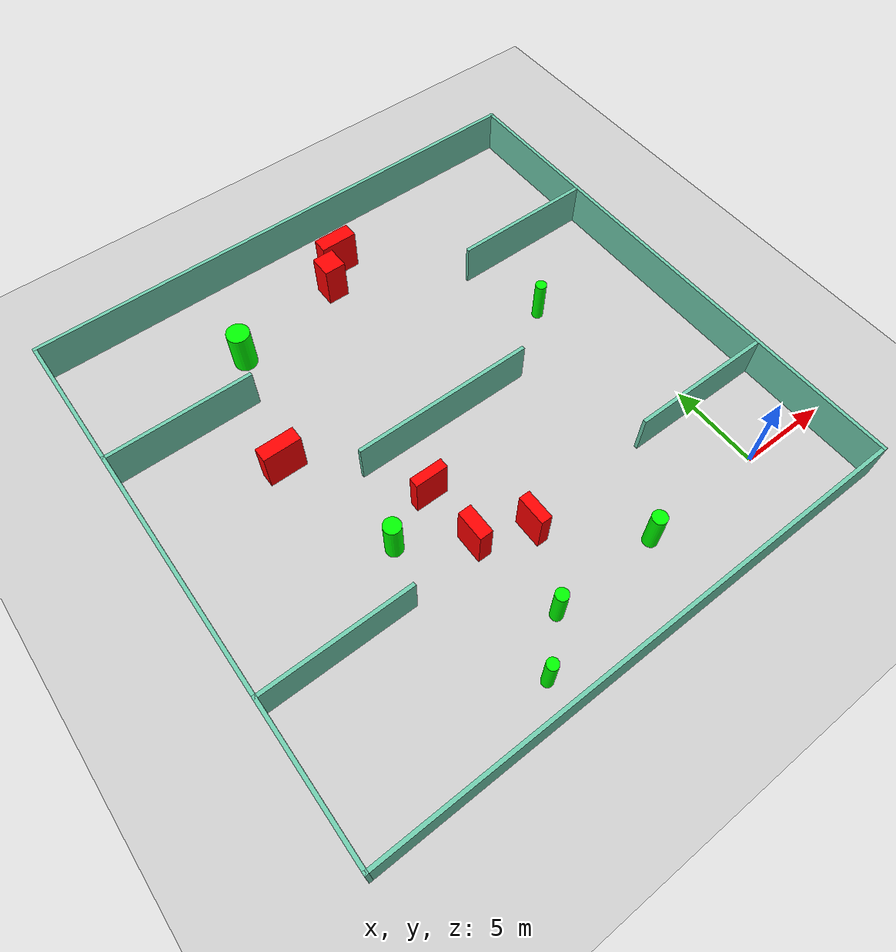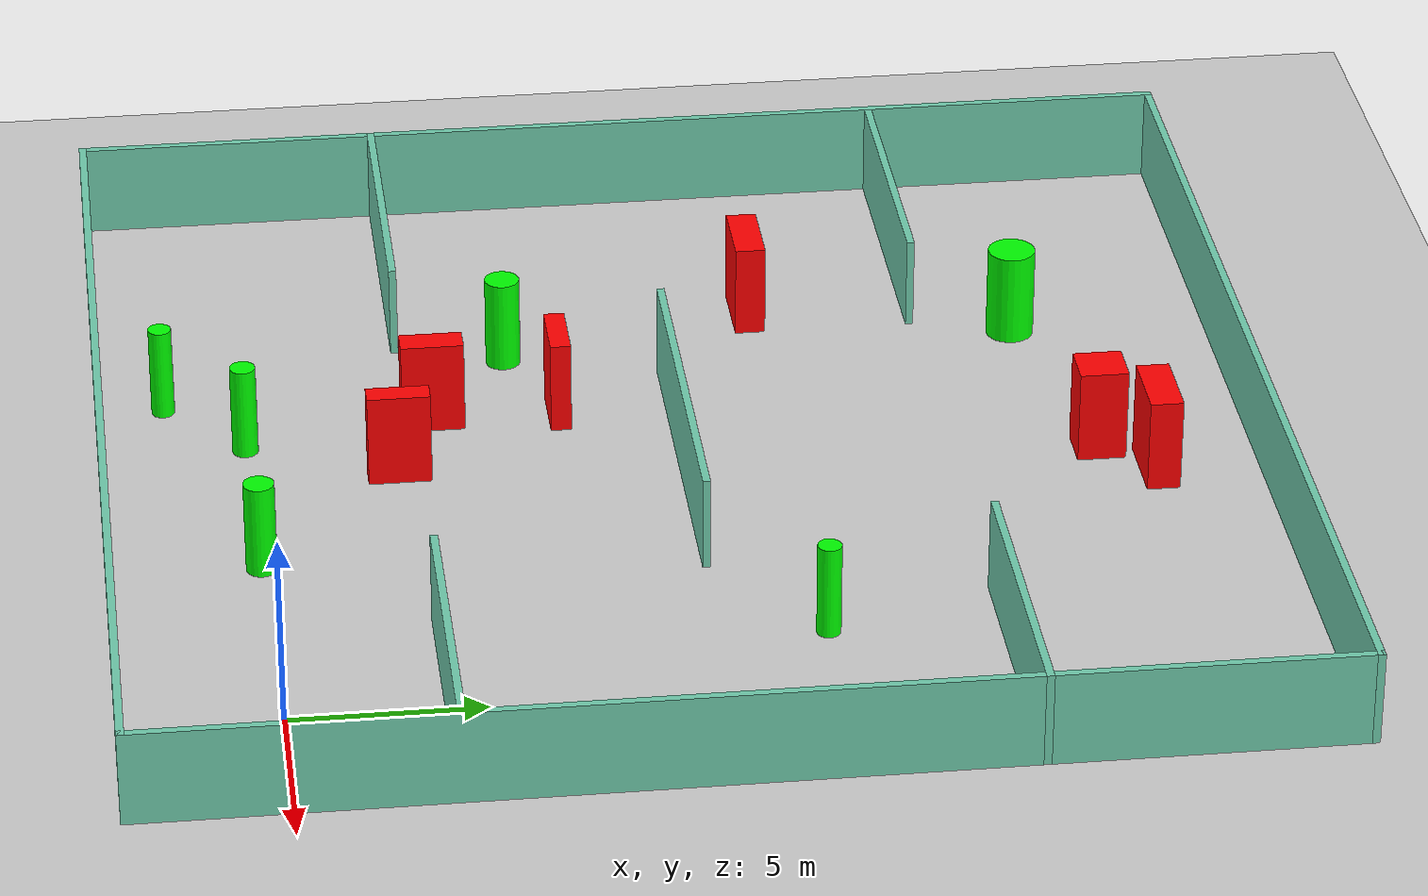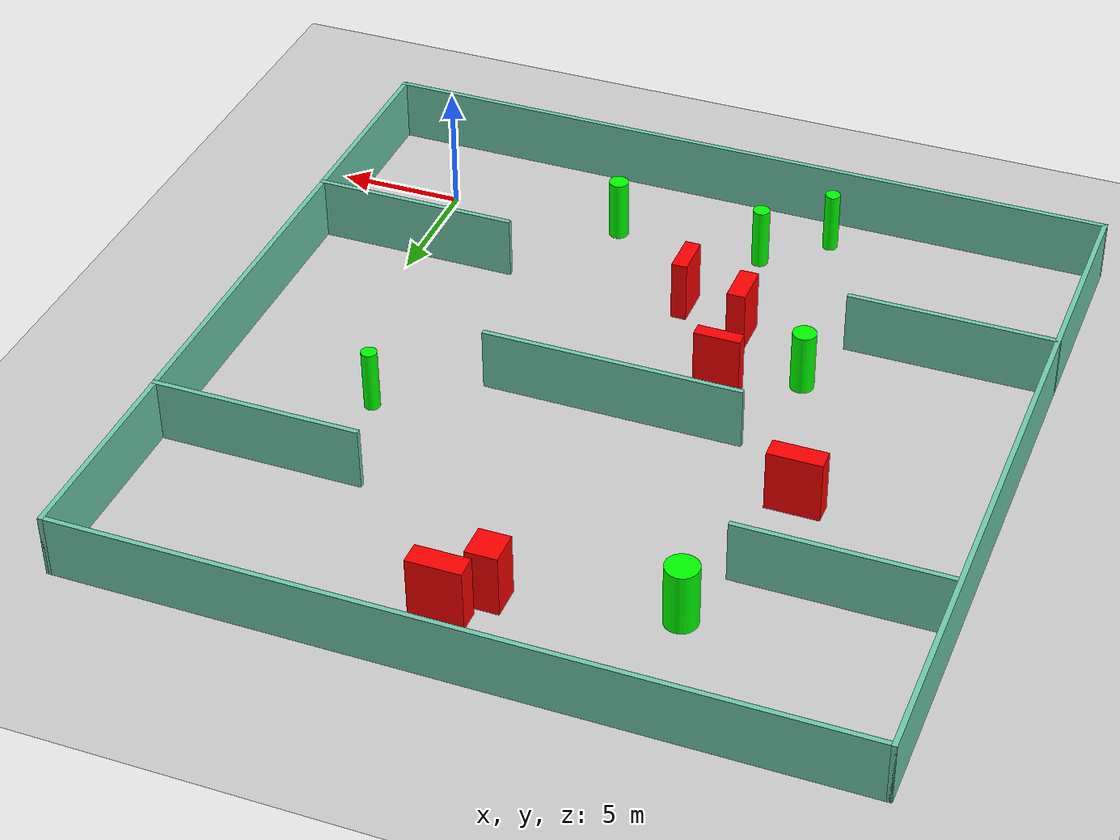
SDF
<sdf version="1.7">
 <world name="default">
  <light name="sun" type="directional">
   <pose>0 0 10 0 -0 0</pose>
   <diffuse>0.8 0.8 0.8 1</diffuse>
   <specular>0.2 0.2 0.2 1</specular>
   <attenuation>
    <range>1000</range>
    <constant>0.9</constant>
    <linear>0.01</linear>
    <quadratic>0.001</quadratic>
   </attenuation>
   <direction>-0.5 0.1 -0.9</direction>
   <spot><inner_angle>0</inner_angle><outer_angle>0</outer_angle><falloff>0</falloff></spot>
  </light>
  <model name="ground_plane">
   <static>1</static>
   <link name="link">
    <collision name="collision">
     <geometry><plane><normal>0 0 1</normal><size>100 100</size></plane></geometry>
     <surface>
      <contact><collide_bitmask>65535</collide_bitmask></contact>
      <friction><ode><mu>100</mu><mu2>50</mu2></ode></friction>
     </surface>
    </collision>
    <visual name="visual">
     <cast_shadows>0</cast_shadows>
     <geometry><plane><normal>0 0 1</normal><size>100 100</size></plane></geometry>
     <material>
      <script><uri>file://media/materials/scripts/gazebo.material</uri><name>Gazebo/Grey</name></script>
     </material>
    </visual>
   </link>
  </model>
  <gravity>0 0 -9.8</gravity>
  <magnetic_field>6e-06 2.3e-05 -4.2e-05</magnetic_field>
  <atmosphere type="adiabatic"/>
  <physics type="ode">
   <max_step_size>0.001</max_step_size>
   <real_time_factor>1</real_time_factor>
   <real_time_update_rate>1000</real_time_update_rate>
  </physics>
  <scene><ambient>0.4 0.4 0.4 1</ambient><background>0.7 0.7 0.7 1</background><shadows>1</shadows></scene>
  <spherical_coordinates>
   <surface_model>EARTH_WGS84</surface_model>
   <latitude_deg>0</latitude_deg>
   <longitude_deg>0</longitude_deg>
   <elevation>0</elevation>
   <heading_deg>0</heading_deg>
  </spherical_coordinates>
  <model name="my_base_walls">
   <link name="Wall_10">
    <collision name="Wall_10_Collision">
     <geometry><box><size>8.2 0.2 2.5</size></box></geometry>
     <pose>0 0 1.25 0 -0 0</pose>
    </collision>
    <visual name="Wall_10_Visual">
     <pose>0 0 1.25 0 -0 0</pose>
     <geometry><box><size>8.2 0.2 2.5</size></box></geometry>
     <material>
      <script><uri>file://media/materials/scripts/gazebo.material</uri><name>Gazebo/Grey</name></script>
      <ambient>0.435294 0.796078 0.67451 1</ambient>
     </material>
     <meta><layer>0</layer></meta>
    </visual>
    <pose>-11 -7 0 0 -0 0</pose>
   </link>
   <link name="Wall_12">
    <collision name="Wall_12_Collision">
     <geometry><box><size>8.2 0.2 2.5</size></box></geometry>
     <pose>0 0 1.25 0 -0 0</pose>
    </collision>
    <visual name="Wall_12_Visual">
     <pose>0 0 1.25 0 -0 0</pose>
     <geometry><box><size>8.2 0.2 2.5</size></box></geometry>
     <material>
      <script><uri>file://media/materials/scripts/gazebo.material</uri><name>Gazebo/Grey</name></script>
      <ambient>0.435294 0.796078 0.67451 1</ambient>
     </material>
     <meta><layer>0</layer></meta>
    </visual>
    <pose>-11 7 0 0 -0 0</pose>
   </link>
   <link name="Wall_14">
    <collision name="Wall_14_Collision">
     <geometry><box><size>8.2 0.2 2.5</size></box></geometry>
     <pose>0 0 1.25 0 -0 0</pose>
    </collision>
    <visual name="Wall_14_Visual">
     <pose>0 0 1.25 0 -0 0</pose>
     <geometry><box><size>8.2 0.2 2.5</size></box></geometry>
     <material>
      <script><uri>file://media/materials/scripts/gazebo.material</uri><name>Gazebo/Grey</name></script>
      <ambient>0.435294 0.796078 0.67451 1</ambient>
     </material>
     <meta><layer>0</layer></meta>
    </visual>
    <pose>11 7 0 0 -0 3.14159</pose>
   </link>
   <link name="Wall_16">
    <collision name="Wall_16_Collision">
     <geometry><box><size>10.2 0.2 2.5</size></box></geometry>
     <pose>0 0 1.25 0 -0 0</pose>
    </collision>
    <visual name="Wall_16_Visual">
     <pose>0 0 1.25 0 -0 0</pose>
     <geometry><box><size>10.2 0.2 2.5</size></box></geometry>
     <material>
      <script><uri>file://media/materials/scripts/gazebo.material</uri><name>Gazebo/Grey</name></script>
      <ambient>0.435294 0.796078 0.67451 1</ambient>
     </material>
     <meta><layer>0</layer></meta>
    </visual>
    <pose>0 0 0 0 -0 3.14159</pose>
   </link>
   <link name="Wall_2">
    <collision name="Wall_2_Collision">
     <geometry><box><size>30.2 0.2 2.5</size></box></geometry>
     <pose>0 0 1.25 0 -0 0</pose>
    </collision>
    <visual name="Wall_2_Visual">
     <pose>0 0 1.25 0 -0 0</pose>
     <geometry><box><size>30.2 0.2 2.5</size></box></geometry>
     <material>
      <script><uri>file://media/materials/scripts/gazebo.material</uri><name>Gazebo/Grey</name></script>
      <ambient>0.435294 0.796078 0.67451 1</ambient>
     </material>
     <meta><layer>0</layer></meta>
    </visual>
    <pose>0 -15 0 0 -0 3.14159</pose>
   </link>
   <link name="Wall_3">
    <collision name="Wall_3_Collision">
     <geometry><box><size>30.2 0.2 2.5</size></box></geometry>
     <pose>0 0 1.25 0 -0 0</pose>
    </collision>
    <visual name="Wall_3_Visual">
     <pose>0 0 1.25 0 -0 0</pose>
     <geometry><box><size>30.2 0.2 2.5</size></box></geometry>
     <material>
      <script><uri>file://media/materials/scripts/gazebo.material</uri><name>Gazebo/Grey</name></script>
      <ambient>0.435294 0.796078 0.67451 1</ambient>
     </material>
     <meta><layer>0</layer></meta>
    </visual>
    <pose>-15 0 0 0 -0 1.5708</pose>
   </link>
   <link name="Wall_4">
    <collision name="Wall_4_Collision">
     <geometry><box><size>30.2 0.2 2.5</size></box></geometry>
     <pose>0 0 1.25 0 -0 0</pose>
    </collision>
    <visual name="Wall_4_Visual">
     <pose>0 0 1.25 0 -0 0</pose>
     <geometry><box><size>30.2 0.2 2.5</size></box></geometry>
     <material>
      <script><uri>file://media/materials/scripts/gazebo.material</uri><name>Gazebo/Grey</name></script>
      <ambient>0.435294 0.796078 0.67451 1</ambient>
     </material>
     <meta><layer>0</layer></meta>
    </visual>
    <pose>0 15 0 0 -0 0</pose>
   </link>
   <link name="Wall_6">
    <collision name="Wall_6_Collision">
     <geometry><box><size>30.2 0.2 2.5</size></box></geometry>
     <pose>0 0 1.25 0 -0 0</pose>
    </collision>
    <visual name="Wall_6_Visual">
     <pose>0 0 1.25 0 -0 0</pose>
     <geometry><box><size>30.2 0.2 2.5</size></box></geometry>
     <material>
      <script><uri>file://media/materials/scripts/gazebo.material</uri><name>Gazebo/Grey</name></script>
      <ambient>0.435294 0.796078 0.67451 1</ambient>
     </material>
     <meta><layer>0</layer></meta>
    </visual>
    <pose>15 0 0 0 -0 1.5708</pose>
   </link>
   <link name="Wall_8">
    <collision name="Wall_8_Collision">
     <geometry><box><size>8.2 0.2 2.5</size></box></geometry>
     <pose>0 0 1.25 0 -0 0</pose>
    </collision>
    <visual name="Wall_8_Visual">
     <pose>0 0 1.25 0 -0 0</pose>
     <geometry><box><size>8.2 0.2 2.5</size></box></geometry>
     <material>
      <script><uri>file://media/materials/scripts/gazebo.material</uri><name>Gazebo/Grey</name></script>
      <ambient>0.435294 0.796078 0.67451 1</ambient>
     </material>
     <meta><layer>0</layer></meta>
    </visual>
    <pose>11 -7 0 0 -0 3.14159</pose>
   </link>
   <static>1</static>
   <pose>-11 11 0 0 -0 0</pose>
  </model>
  <model name="cylinder1">
   <static>1</static>
   <link name="link">
    <inertial>
     <mass>1</mass>
     <inertia><ixx>0.5</ixx><ixy>0</ixy><ixz>0</ixz><iyy>0.5</iyy><iyz>0</iyz><izz>1</izz></inertia>
    </inertial>
    <collision name="collision">
     <geometry><cylinder><radius>0.4615935199560974</radius><length>2.5</length></cylinder></geometry>
    </collision>
    <visual name="visual">
     <geometry><cylinder><radius>0.4615935199560974</radius><length>2.5</length></cylinder></geometry>
     <material>
      <ambient>0 1 0 1</ambient>
      <diffuse>0 1 0 1</diffuse>
      <specular>0.1 0.1 0.1 1</specular>
      <emissive>0 0 0 0</emissive>
     </material>
    </visual>
   </link>
   <pose>-17.101953012410245 6.864021003926148 1.25 0 0 0</pose>
  </model>
  <model name="cylinder2">
   <static>1</static>
   <link name="link">
    <inertial>
     <mass>1</mass>
     <inertia><ixx>0.5</ixx><ixy>0</ixy><ixz>0</ixz><iyy>0.5</iyy><iyz>0</iyz><izz>1</izz></inertia>
    </inertial>
    <collision name="collision">
     <geometry><cylinder><radius>0.30793343039884913</radius><length>2.5</length></cylinder></geometry>
    </collision>
    <visual name="visual">
     <geometry><cylinder><radius>0.30793343039884913</radius><length>2.5</length></cylinder></geometry>
     <material>
      <ambient>0 1 0 1</ambient>
      <diffuse>0 1 0 1</diffuse>
      <specular>0.1 0.1 0.1 1</specular>
      <emissive>0 0 0 0</emissive>
     </material>
    </visual>
   </link>
   <pose>-2.480556562502649 13.63659234368063 1.25 0 0 0</pose>
  </model>
  <model name="cylinder3">
   <static>1</static>
   <link name="link">
    <inertial>
     <mass>1</mass>
     <inertia><ixx>0.5</ixx><ixy>0</ixy><ixz>0</ixz><iyy>0.5</iyy><iyz>0</iyz><izz>1</izz></inertia>
    </inertial>
    <collision name="collision">
     <geometry><cylinder><radius>0.39523740953146325</radius><length>2.5</length></cylinder></geometry>
    </collision>
    <visual name="visual">
     <geometry><cylinder><radius>0.39523740953146325</radius><length>2.5</length></cylinder></geometry>
     <material>
      <ambient>0 1 0 1</ambient>
      <diffuse>0 1 0 1</diffuse>
      <specular>0.1 0.1 0.1 1</specular>
      <emissive>0 0 0 0</emissive>
     </material>
    </visual>
   </link>
   <pose>-7.112991833191575 -0.15652401360564916 1.25 0 0 0</pose>
  </model>
  <model name="cylinder4">
   <static>1</static>
   <link name="link">
    <inertial>
     <mass>1</mass>
     <inertia><ixx>0.5</ixx><ixy>0</ixy><ixz>0</ixz><iyy>0.5</iyy><iyz>0</iyz><izz>1</izz></inertia>
    </inertial>
    <collision name="collision">
     <geometry><cylinder><radius>0.3026572627058955</radius><length>2.5</length></cylinder></geometry>
    </collision>
    <visual name="visual">
     <geometry><cylinder><radius>0.3026572627058955</radius><length>2.5</length></cylinder></geometry>
     <material>
      <ambient>0 1 0 1</ambient>
      <diffuse>0 1 0 1</diffuse>
      <specular>0.1 0.1 0.1 1</specular>
      <emissive>0 0 0 0</emissive>
     </material>
    </visual>
   </link>
   <pose>-15.413270527012473 -2.3023838224340185 1.25 0 0 0</pose>
  </model>
  <model name="cylinder5">
   <static>1</static>
   <link name="link">
    <inertial>
     <mass>1</mass>
     <inertia><ixx>0.5</ixx><ixy>0</ixy><ixz>0</ixz><iyy>0.5</iyy><iyz>0</iyz><izz>1</izz></inertia>
    </inertial>
    <collision name="collision">
     <geometry><cylinder><radius>0.6336604602448821</radius><length>2.5</length></cylinder></geometry>
    </collision>
    <visual name="visual">
     <geometry><cylinder><radius>0.6336604602448821</radius><length>2.5</length></cylinder></geometry>
     <material>
      <ambient>0 1 0 1</ambient>
      <diffuse>0 1 0 1</diffuse>
      <specular>0.1 0.1 0.1 1</specular>
      <emissive>0 0 0 0</emissive>
     </material>
    </visual>
   </link>
   <pose>-17.16149222416987 20.630403016624797 1.25 0 0 0</pose>
  </model>
  <model name="cylinder6">
   <static>1</static>
   <link name="link">
    <inertial>
     <mass>1</mass>
     <inertia><ixx>0.5</ixx><ixy>0</ixy><ixz>0</ixz><iyy>0.5</iyy><iyz>0</iyz><izz>1</izz></inertia>
    </inertial>
    <collision name="collision">
     <geometry><cylinder><radius>0.3357500768759087</radius><length>2.5</length></cylinder></geometry>
    </collision>
    <visual name="visual">
     <geometry><cylinder><radius>0.3357500768759087</radius><length>2.5</length></cylinder></geometry>
     <material>
      <ambient>0 1 0 1</ambient>
      <diffuse>0 1 0 1</diffuse>
      <specular>0.1 0.1 0.1 1</specular>
      <emissive>0 0 0 0</emissive>
     </material>
    </visual>
   </link>
   <pose>-13.101370196963524 -0.25137862096097674 1.25 0 0 0</pose>
  </model>
  <model name="box1">
   <static>1</static>
   <link name="link">
    <inertial>
     <mass>1</mass>
     <inertia><ixx>0.083</ixx><ixy>0</ixy><ixz>0</ixz><iyy>0.083</iyy><iyz>0</iyz><izz>0.083</izz></inertia>
    </inertial>
    <collision name="collision">
     <geometry><box><size>0.7368795465691729 1.6558296047383265 2.5</size></box></geometry>
    </collision>
    <visual name="visual">
     <geometry><box><size>0.7368795465691729 1.6558296047383265 2.5</size></box></geometry>
     <material>
      <ambient>1 0 0 1</ambient>
      <diffuse>1 0 0 1</diffuse>
      <specular>0.1 0.1 0.1 1</specular>
      <emissive>0 0 0 0</emissive>
     </material>
    </visual>
    <sensor name="my_contact" type="contact">
     <contact><collision>box_collision</collision><topic>__default_topic__</topic></contact>
    </sensor>
   </link>
   <pose>-13.975285343610558 4.723142157075863 1.25 0 0 0</pose>
  </model>
  <model name="box2">
   <static>1</static>
   <link name="link">
    <inertial>
     <mass>1</mass>
     <inertia><ixx>0.083</ixx><ixy>0</ixy><ixz>0</ixz><iyy>0.083</iyy><iyz>0</iyz><izz>0.083</izz></inertia>
    </inertial>
    <collision name="collision">
     <geometry><box><size>2.0984681801038905 0.8030872361469255 2.5</size></box></geometry>
    </collision>
    <visual name="visual">
     <geometry><box><size>2.0984681801038905 0.8030872361469255 2.5</size></box></geometry>
     <material>
      <ambient>1 0 0 1</ambient>
      <diffuse>1 0 0 1</diffuse>
      <specular>0.1 0.1 0.1 1</specular>
      <emissive>0 0 0 0</emissive>
     </material>
    </visual>
    <sensor name="my_contact" type="contact">
     <contact><collision>box_collision</collision><topic>__default_topic__</topic></contact>
    </sensor>
   </link>
   <pose>-18.974981912624322 13.652147458791987 1.25 0 0 0</pose>
  </model>
  <model name="box3">
   <static>1</static>
   <link name="link">
    <inertial>
     <mass>1</mass>
     <inertia><ixx>0.083</ixx><ixy>0</ixy><ixz>0</ixz><iyy>0.083</iyy><iyz>0</iyz><izz>0.083</izz></inertia>
    </inertial>
    <collision name="collision">
     <geometry><box><size>1.8164145548617407 0.5435851542094192 2.5</size></box></geometry>
    </collision>
    <visual name="visual">
     <geometry><box><size>1.8164145548617407 0.5435851542094192 2.5</size></box></geometry>
     <material>
      <ambient>1 0 0 1</ambient>
      <diffuse>1 0 0 1</diffuse>
      <specular>0.1 0.1 0.1 1</specular>
      <emissive>0 0 0 0</emissive>
     </material>
    </visual>
    <sensor name="my_contact" type="contact">
     <contact><collision>box_collision</collision><topic>__default_topic__</topic></contact>
    </sensor>
   </link>
   <pose>-14.151578803720081 8.052326704855467 1.25 0 0 0</pose>
  </model>
  <model name="box4">
   <static>1</static>
   <link name="link">
    <inertial>
     <mass>1</mass>
     <inertia><ixx>0.083</ixx><ixy>0</ixy><ixz>0</ixz><iyy>0.083</iyy><iyz>0</iyz><izz>0.083</izz></inertia>
    </inertial>
    <collision name="collision">
     <geometry><box><size>0.6120970401647892 1.6437144112816968 2.5</size></box></geometry>
    </collision>
    <visual name="visual">
     <geometry><box><size>0.6120970401647892 1.6437144112816968 2.5</size></box></geometry>
     <material>
      <ambient>1 0 0 1</ambient>
      <diffuse>1 0 0 1</diffuse>
      <specular>0.1 0.1 0.1 1</specular>
      <emissive>0 0 0 0</emissive>
     </material>
    </visual>
    <sensor name="my_contact" type="contact">
     <contact><collision>box_collision</collision><topic>__default_topic__</topic></contact>
    </sensor>
   </link>
   <pose>-11.312694761362522 3.651166866448868 1.25 0 0 0</pose>
  </model>
  <model name="box5">
   <static>1</static>
   <link name="link">
    <inertial>
     <mass>1</mass>
     <inertia><ixx>0.083</ixx><ixy>0</ixy><ixz>0</ixz><iyy>0.083</iyy><iyz>0</iyz><izz>0.083</izz></inertia>
    </inertial>
    <collision name="collision">
     <geometry><box><size>2.0861665046645235 0.8667493277773767 2.5</size></box></geometry>
    </collision>
    <visual name="visual">
     <geometry><box><size>2.0861665046645235 0.8667493277773767 2.5</size></box></geometry>
     <material>
      <ambient>1 0 0 1</ambient>
      <diffuse>1 0 0 1</diffuse>
      <specular>0.1 0.1 0.1 1</specular>
      <emissive>0 0 0 0</emissive>
     </material>
    </visual>
    <sensor name="my_contact" type="contact">
     <contact><collision>box_collision</collision><topic>__default_topic__</topic></contact>
    </sensor>
   </link>
   <pose>-9.445281997727228 23.2068578512371 1.25 0 0 0</pose>
  </model>
  <model name="box6">
   <static>1</static>
   <link name="link">
    <inertial>
     <mass>1</mass>
     <inertia><ixx>0.083</ixx><ixy>0</ixy><ixz>0</ixz><iyy>0.083</iyy><iyz>0</iyz><izz>0.083</izz></inertia>
    </inertial>
    <collision name="collision">
     <geometry><box><size>1.2185605069295216 1.2744119092113646 2.5</size></box></geometry>
    </collision>
    <visual name="visual">
     <geometry><box><size>1.2185605069295216 1.2744119092113646 2.5</size></box></geometry>
     <material>
      <ambient>1 0 0 1</ambient>
      <diffuse>1 0 0 1</diffuse>
      <specular>0.1 0.1 0.1 1</specular>
      <emissive>0 0 0 0</emissive>
     </material>
    </visual>
    <sensor name="my_contact" type="contact">
     <contact><collision>box_collision</collision><topic>__default_topic__</topic></contact>
    </sensor>
   </link>
   <pose>-10.703438354665142 21.890035678169397 1.25 0 0 0</pose>
  </model>
 </world>
</sdf>
